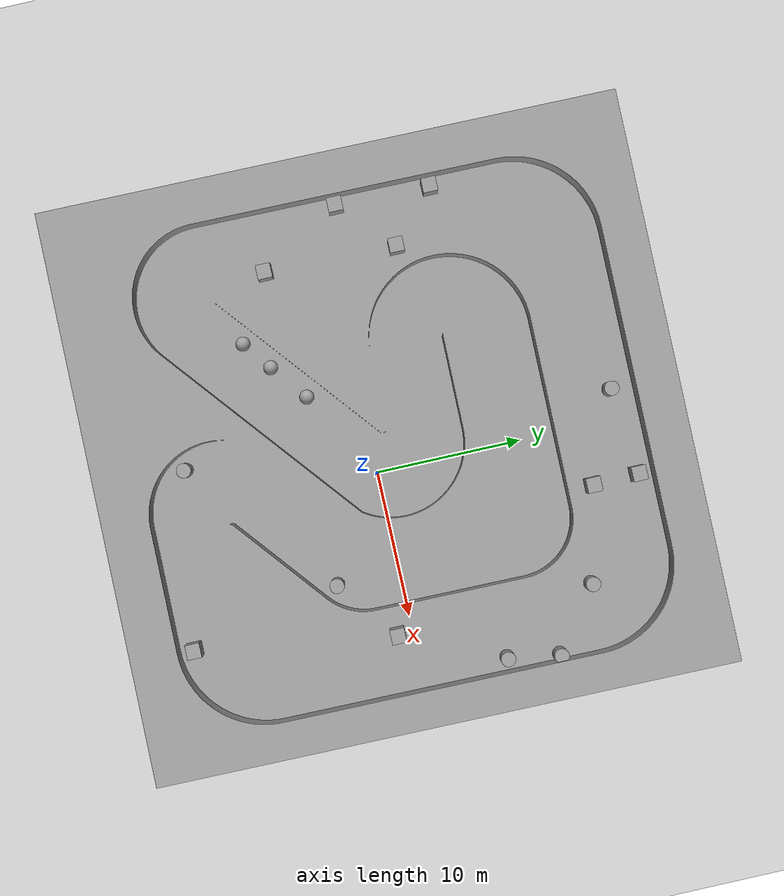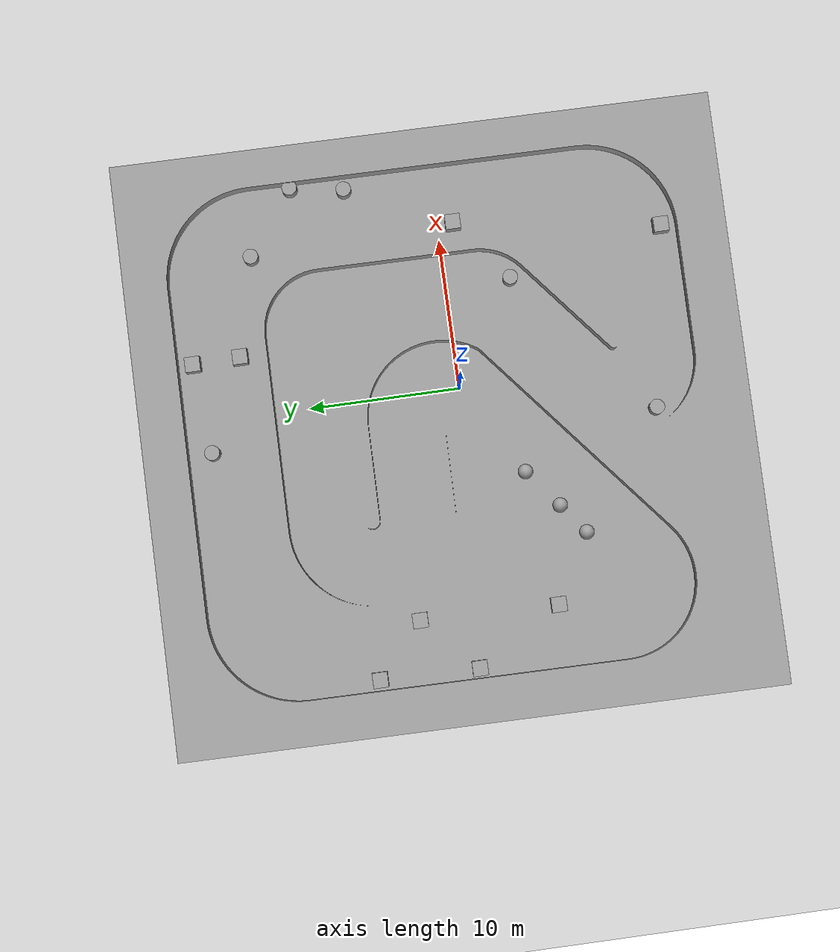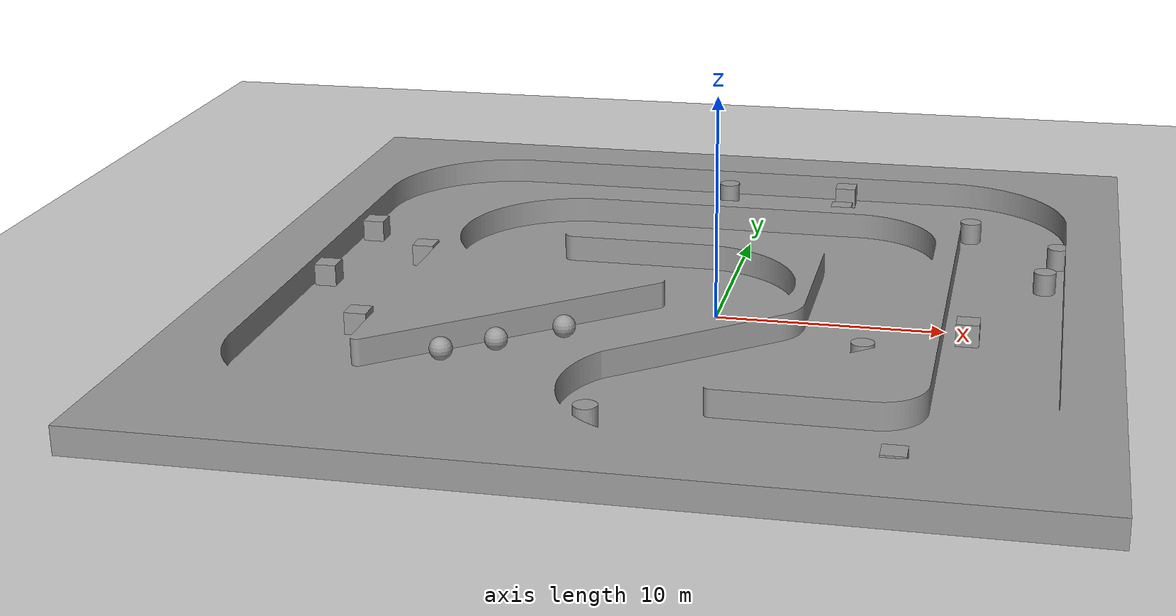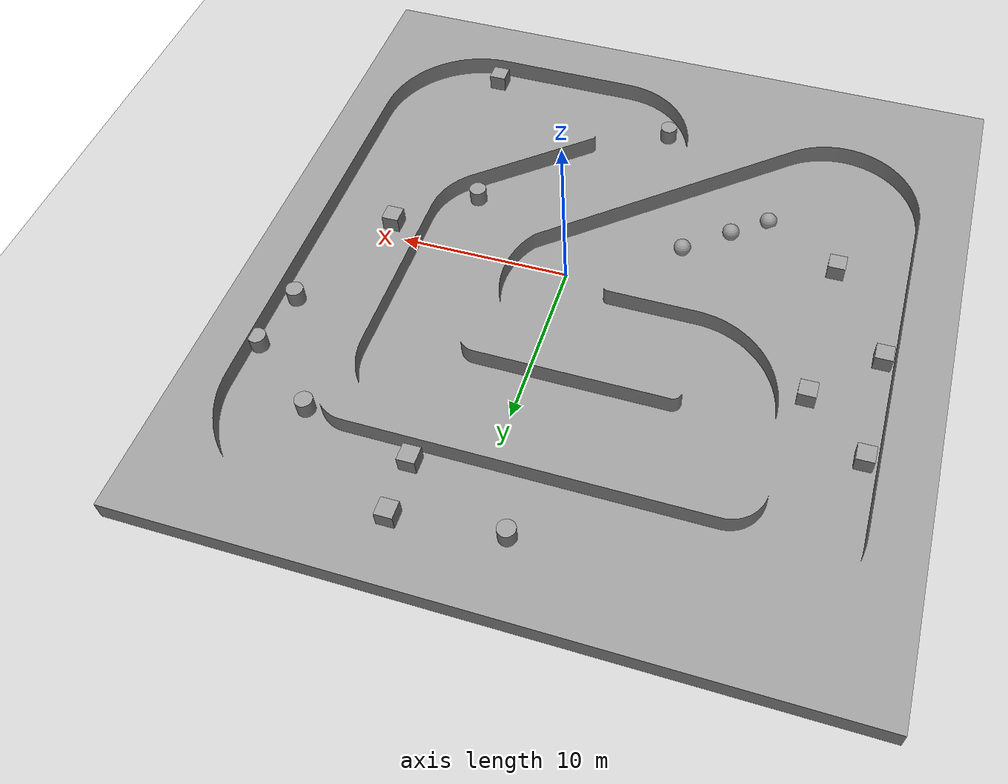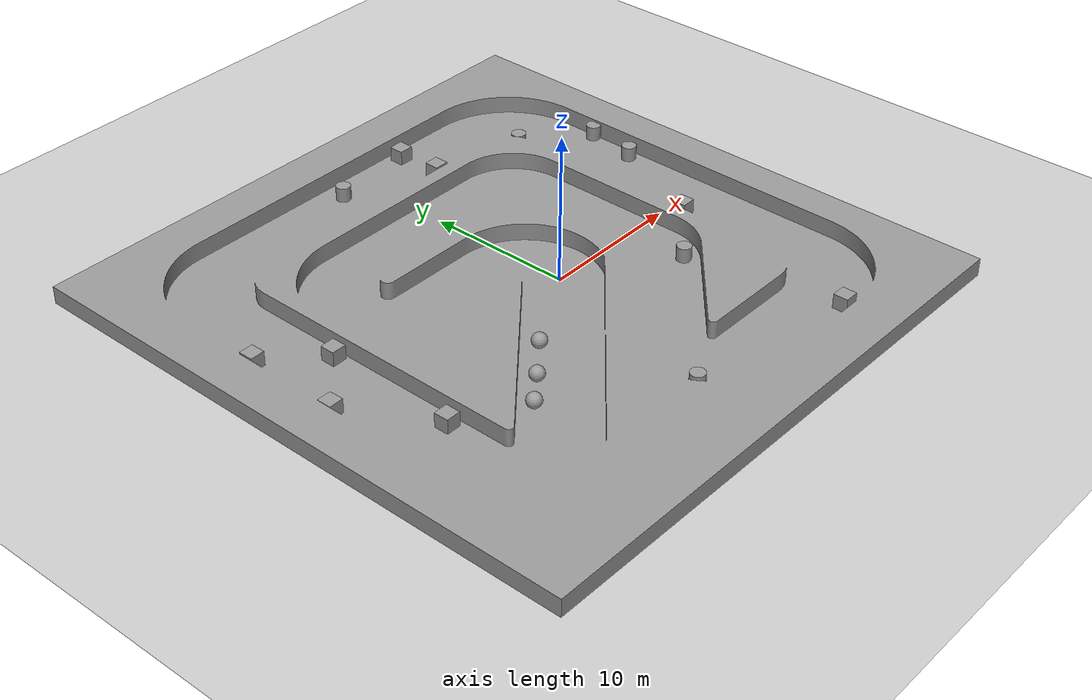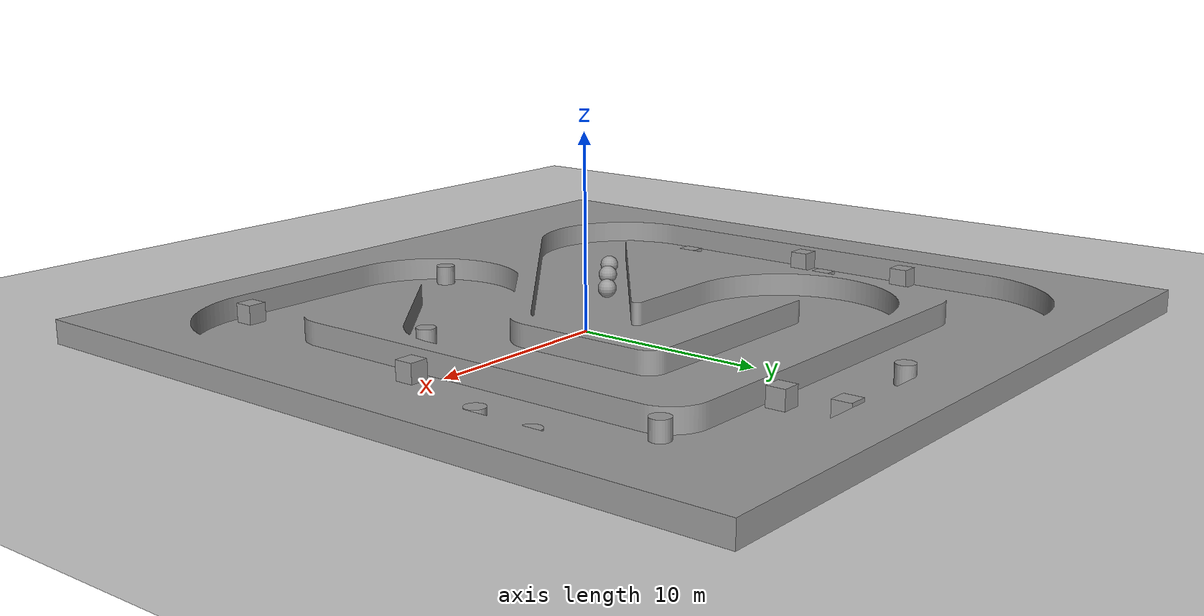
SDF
<sdf version="1.7">
 <world name="default">
  <light name="sun" type="directional">
   <pose>0 0 10 0 -0 0</pose>
   <diffuse>0.8 0.8 0.8 1</diffuse>
   <specular>0.2 0.2 0.2 1</specular>
   <attenuation>
    <range>1000</range>
    <constant>0.9</constant>
    <linear>0.01</linear>
    <quadratic>0.001</quadratic>
   </attenuation>
   <direction>-0.5 0.1 -0.9</direction>
   <spot><inner_angle>0</inner_angle><outer_angle>0</outer_angle><falloff>0</falloff></spot>
  </light>
  <model name="ground_plane">
   <static>1</static>
   <link name="link">
    <collision name="collision">
     <geometry><plane><normal>0 0 1</normal><size>100 100</size></plane></geometry>
     <surface><friction><ode><mu>100</mu><mu2>50</mu2></ode></friction></surface>
    </collision>
    <visual name="visual">
     <cast_shadows>0</cast_shadows>
     <geometry><plane><normal>0 0 1</normal><size>100 100</size></plane></geometry>
     <material>
      <script><uri>file://media/materials/scripts/gazebo.material</uri><name>Gazebo/Grey</name></script>
     </material>
    </visual>
   </link>
  </model>
  <gravity>0 0 -9.8</gravity>
  <magnetic_field>6e-06 2.3e-05 -4.2e-05</magnetic_field>
  <atmosphere type="adiabatic"/>
  <physics type="ode">
   <max_step_size>0.001</max_step_size>
   <real_time_factor>1</real_time_factor>
   <real_time_update_rate>1000</real_time_update_rate>
  </physics>
  <scene><ambient>0.4 0.4 0.4 1</ambient><background>0.7 0.7 0.7 1</background><shadows>1</shadows></scene>
  <audio><device>default</device></audio>
  <spherical_coordinates>
   <surface_model>EARTH_WGS84</surface_model>
   <latitude_deg>0</latitude_deg>
   <longitude_deg>0</longitude_deg>
   <elevation>0</elevation>
   <heading_deg>0</heading_deg>
  </spherical_coordinates>
  <model name="race_track_gap">
   <link name="link_11">
    <inertial>
     <mass>1e+07</mass>
     <inertia>
      <ixx>0.166667</ixx>
      <ixy>0</ixy>
      <ixz>0</ixz>
      <iyy>0.166667</iyy>
      <iyz>0</iyz>
      <izz>0.166667</izz>
     </inertia>
    </inertial>
    <pose>-13.9587 8.82102 0 1.57148 9e-06 3.13255</pose>
    <visual name="visual">
     <geometry>
      <mesh>
       <uri>/home/ivan/ros2_ws_2501/src/f112th_sim_2501_alpha/worlds/pista.stl</uri>
       <scale>0.002 0.002 0.002</scale>
      </mesh>
     </geometry>
     <material>
      <lighting>1</lighting>
      <script><uri>file://media/materials/scripts/gazebo.material</uri><name>Gazebo/Grey</name></script>
      <shader type="pixel"><normal_map>__default__</normal_map></shader>
      <ambient>0.3 0.3 0.3 1</ambient>
      <diffuse>0.7 0.7 0.7 1</diffuse>
      <specular>0.01 0.01 0.01 1</specular>
      <emissive>0 0 0 1</emissive>
     </material>
    </visual>
    <collision name="collision">
     <geometry>
      <mesh>
       <uri>/home/ivan/ros2_ws_2501/src/f112th_sim_2501_alpha/worlds/pista.stl</uri>
       <scale>0.002 0.002 0.002</scale>
      </mesh>
     </geometry>
     <surface>
      <friction>
       <ode><mu>1</mu><mu2>1</mu2><fdir1>0 0 0</fdir1><slip1>0</slip1><slip2>0</slip2></ode>
       <torsional>
        <coefficient>1</coefficient>
        <patch_radius>0</patch_radius>
        <surface_radius>0</surface_radius>
        <use_patch_radius>1</use_patch_radius>
        <ode><slip>0</slip></ode>
       </torsional>
      </friction>
      <bounce><restitution_coefficient>0</restitution_coefficient><threshold>1e+06</threshold></bounce>
      <contact>
       <collide_without_contact>0</collide_without_contact>
       <collide_without_contact_bitmask>1</collide_without_contact_bitmask>
       <collide_bitmask>1</collide_bitmask>
       <ode>
        <soft_cfm>0</soft_cfm>
        <soft_erp>0.2</soft_erp>
        <kp>1e+13</kp>
        <kd>1</kd>
        <max_vel>0.01</max_vel>
        <min_depth>0</min_depth>
       </ode>
       <bullet>
        <split_impulse>1</split_impulse>
        <split_impulse_penetration_threshold>-0.01</split_impulse_penetration_threshold>
        <soft_cfm>0</soft_cfm>
        <soft_erp>0.2</soft_erp>
        <kp>1e+13</kp>
        <kd>1</kd>
       </bullet>
      </contact>
     </surface>
    </collision>
   </link>
   <link name="link_14">
    <inertial>
     <mass>1</mass>
     <inertia><ixx>0.145833</ixx><ixy>0</ixy><ixz>0</ixz><iyy>0.145833</iyy><iyz>0</iyz><izz>0.125</izz></inertia>
    </inertial>
    <pose>-2.10932 14.0891 -0.65224 0 -0 0</pose>
    <visual name="visual">
     <geometry><cylinder><radius>0.5</radius><length>1</length></cylinder></geometry>
     <material>
      <lighting>1</lighting>
      <script><uri>file://media/materials/scripts/gazebo.material</uri><name>Gazebo/Grey</name></script>
      <shader type="pixel"/>
     </material>
    </visual>
    <collision name="collision">
     <geometry><cylinder><radius>0.5</radius><length>1</length></cylinder></geometry>
     <surface>
      <friction>
       <ode><mu>1</mu><mu2>1</mu2><fdir1>0 0 0</fdir1><slip1>0</slip1><slip2>0</slip2></ode>
       <torsional>
        <coefficient>1</coefficient>
        <patch_radius>0</patch_radius>
        <surface_radius>0</surface_radius>
        <use_patch_radius>1</use_patch_radius>
        <ode><slip>0</slip></ode>
       </torsional>
      </friction>
      <bounce><restitution_coefficient>0</restitution_coefficient><threshold>1e+06</threshold></bounce>
      <contact>
       <collide_without_contact>0</collide_without_contact>
       <collide_without_contact_bitmask>1</collide_without_contact_bitmask>
       <collide_bitmask>1</collide_bitmask>
       <ode>
        <soft_cfm>0</soft_cfm>
        <soft_erp>0.2</soft_erp>
        <kp>1e+13</kp>
        <kd>1</kd>
        <max_vel>0.01</max_vel>
        <min_depth>0</min_depth>
       </ode>
       <bullet>
        <split_impulse>1</split_impulse>
        <split_impulse_penetration_threshold>-0.01</split_impulse_penetration_threshold>
        <soft_cfm>0</soft_cfm>
        <soft_erp>0.2</soft_erp>
        <kp>1e+13</kp>
        <kd>1</kd>
       </bullet>
      </contact>
     </surface>
    </collision>
   </link>
   <link name="link_15">
    <inertial>
     <mass>1</mass>
     <inertia>
      <ixx>0.166667</ixx>
      <ixy>0</ixy>
      <ixz>0</ixz>
      <iyy>0.166667</iyy>
      <iyz>0</iyz>
      <izz>0.166667</izz>
     </inertia>
    </inertial>
    <pose>3.87998 14.6441 -0.65224 0 -0 0</pose>
    <visual name="visual">
     <geometry><box><size>1 1 1</size></box></geometry>
     <material>
      <lighting>1</lighting>
      <script><uri>file://media/materials/scripts/gazebo.material</uri><name>Gazebo/Grey</name></script>
      <shader type="pixel"/>
     </material>
    </visual>
    <collision name="collision">
     <geometry><box><size>1 1 1</size></box></geometry>
     <surface>
      <friction>
       <ode><mu>1</mu><mu2>1</mu2><fdir1>0 0 0</fdir1><slip1>0</slip1><slip2>0</slip2></ode>
       <torsional>
        <coefficient>1</coefficient>
        <patch_radius>0</patch_radius>
        <surface_radius>0</surface_radius>
        <use_patch_radius>1</use_patch_radius>
        <ode><slip>0</slip></ode>
       </torsional>
      </friction>
      <bounce><restitution_coefficient>0</restitution_coefficient><threshold>1e+06</threshold></bounce>
      <contact>
       <collide_without_contact>0</collide_without_contact>
       <collide_without_contact_bitmask>1</collide_without_contact_bitmask>
       <collide_bitmask>1</collide_bitmask>
       <ode>
        <soft_cfm>0</soft_cfm>
        <soft_erp>0.2</soft_erp>
        <kp>1e+13</kp>
        <kd>1</kd>
        <max_vel>0.01</max_vel>
        <min_depth>0</min_depth>
       </ode>
       <bullet>
        <split_impulse>1</split_impulse>
        <split_impulse_penetration_threshold>-0.01</split_impulse_penetration_threshold>
        <soft_cfm>0</soft_cfm>
        <soft_erp>0.2</soft_erp>
        <kp>1e+13</kp>
        <kd>1</kd>
       </bullet>
      </contact>
     </surface>
    </collision>
   </link>
   <link name="link_16">
    <inertial>
     <mass>1</mass>
     <inertia>
      <ixx>0.166667</ixx>
      <ixy>0</ixy>
      <ixz>0</ixz>
      <iyy>0.166667</iyy>
      <iyz>0</iyz>
      <izz>0.166667</izz>
     </inertia>
    </inertial>
    <pose>3.96541 11.4857 -0.65224 0 -0 0</pose>
    <visual name="visual">
     <geometry><box><size>1 1 1</size></box></geometry>
     <material>
      <lighting>1</lighting>
      <script><uri>file://media/materials/scripts/gazebo.material</uri><name>Gazebo/Grey</name></script>
      <shader type="pixel"/>
     </material>
    </visual>
    <collision name="collision">
     <geometry><box><size>1 1 1</size></box></geometry>
     <surface>
      <friction>
       <ode><mu>1</mu><mu2>1</mu2><fdir1>0 0 0</fdir1><slip1>0</slip1><slip2>0</slip2></ode>
       <torsional>
        <coefficient>1</coefficient>
        <patch_radius>0</patch_radius>
        <surface_radius>0</surface_radius>
        <use_patch_radius>1</use_patch_radius>
        <ode><slip>0</slip></ode>
       </torsional>
      </friction>
      <bounce><restitution_coefficient>0</restitution_coefficient><threshold>1e+06</threshold></bounce>
      <contact>
       <collide_without_contact>0</collide_without_contact>
       <collide_without_contact_bitmask>1</collide_without_contact_bitmask>
       <collide_bitmask>1</collide_bitmask>
       <ode>
        <soft_cfm>0</soft_cfm>
        <soft_erp>0.2</soft_erp>
        <kp>1e+13</kp>
        <kd>1</kd>
        <max_vel>0.01</max_vel>
        <min_depth>0</min_depth>
       </ode>
       <bullet>
        <split_impulse>1</split_impulse>
        <split_impulse_penetration_threshold>-0.01</split_impulse_penetration_threshold>
        <soft_cfm>0</soft_cfm>
        <soft_erp>0.2</soft_erp>
        <kp>1e+13</kp>
        <kd>1</kd>
       </bullet>
      </contact>
     </surface>
    </collision>
   </link>
   <link name="link_17">
    <inertial>
     <mass>1</mass>
     <inertia><ixx>0.145833</ixx><ixy>0</ixy><ixz>0</ixz><iyy>0.145833</iyy><iyz>0</iyz><izz>0.125</izz></inertia>
    </inertial>
    <pose>10.4708 9.93328 -0.65224 0 -0 0</pose>
    <visual name="visual">
     <geometry><cylinder><radius>0.5</radius><length>1</length></cylinder></geometry>
     <material>
      <lighting>1</lighting>
      <script><uri>file://media/materials/scripts/gazebo.material</uri><name>Gazebo/Grey</name></script>
      <shader type="pixel"/>
     </material>
    </visual>
    <collision name="collision">
     <geometry><cylinder><radius>0.5</radius><length>1</length></cylinder></geometry>
     <surface>
      <friction>
       <ode><mu>1</mu><mu2>1</mu2><fdir1>0 0 0</fdir1><slip1>0</slip1><slip2>0</slip2></ode>
       <torsional>
        <coefficient>1</coefficient>
        <patch_radius>0</patch_radius>
        <surface_radius>0</surface_radius>
        <use_patch_radius>1</use_patch_radius>
        <ode><slip>0</slip></ode>
       </torsional>
      </friction>
      <bounce><restitution_coefficient>0</restitution_coefficient><threshold>1e+06</threshold></bounce>
      <contact>
       <collide_without_contact>0</collide_without_contact>
       <collide_without_contact_bitmask>1</collide_without_contact_bitmask>
       <collide_bitmask>1</collide_bitmask>
       <ode>
        <soft_cfm>0</soft_cfm>
        <soft_erp>0.2</soft_erp>
        <kp>1e+13</kp>
        <kd>1</kd>
        <max_vel>0.01</max_vel>
        <min_depth>0</min_depth>
       </ode>
       <bullet>
        <split_impulse>1</split_impulse>
        <split_impulse_penetration_threshold>-0.01</split_impulse_penetration_threshold>
        <soft_cfm>0</soft_cfm>
        <soft_erp>0.2</soft_erp>
        <kp>1e+13</kp>
        <kd>1</kd>
       </bullet>
      </contact>
     </surface>
    </collision>
   </link>
   <link name="link_18">
    <inertial>
     <mass>1</mass>
     <inertia><ixx>0.145833</ixx><ixy>0</ixy><ixz>0</ixz><iyy>0.145833</iyy><iyz>0</iyz><izz>0.125</izz></inertia>
    </inertial>
    <pose>14.6852 6.80346 -0.65224 0 -0 0</pose>
    <visual name="visual">
     <geometry><cylinder><radius>0.5</radius><length>1</length></cylinder></geometry>
     <material>
      <lighting>1</lighting>
      <script><uri>file://media/materials/scripts/gazebo.material</uri><name>Gazebo/Grey</name></script>
      <shader type="pixel"/>
     </material>
    </visual>
    <collision name="collision">
     <geometry><cylinder><radius>0.5</radius><length>1</length></cylinder></geometry>
     <surface>
      <friction>
       <ode><mu>1</mu><mu2>1</mu2><fdir1>0 0 0</fdir1><slip1>0</slip1><slip2>0</slip2></ode>
       <torsional>
        <coefficient>1</coefficient>
        <patch_radius>0</patch_radius>
        <surface_radius>0</surface_radius>
        <use_patch_radius>1</use_patch_radius>
        <ode><slip>0</slip></ode>
       </torsional>
      </friction>
      <bounce><restitution_coefficient>0</restitution_coefficient><threshold>1e+06</threshold></bounce>
      <contact>
       <collide_without_contact>0</collide_without_contact>
       <collide_without_contact_bitmask>1</collide_without_contact_bitmask>
       <collide_bitmask>1</collide_bitmask>
       <ode>
        <soft_cfm>0</soft_cfm>
        <soft_erp>0.2</soft_erp>
        <kp>1e+13</kp>
        <kd>1</kd>
        <max_vel>0.01</max_vel>
        <min_depth>0</min_depth>
       </ode>
       <bullet>
        <split_impulse>1</split_impulse>
        <split_impulse_penetration_threshold>-0.01</split_impulse_penetration_threshold>
        <soft_cfm>0</soft_cfm>
        <soft_erp>0.2</soft_erp>
        <kp>1e+13</kp>
        <kd>1</kd>
       </bullet>
      </contact>
     </surface>
    </collision>
   </link>
   <link name="link_19">
    <inertial>
     <mass>1</mass>
     <inertia><ixx>0.145833</ixx><ixy>0</ixy><ixz>0</ixz><iyy>0.145833</iyy><iyz>0</iyz><izz>0.125</izz></inertia>
    </inertial>
    <pose>14.114 3.25758 -0.65224 0 -0 0</pose>
    <visual name="visual">
     <geometry><cylinder><radius>0.5</radius><length>1</length></cylinder></geometry>
     <material>
      <lighting>1</lighting>
      <script><uri>file://media/materials/scripts/gazebo.material</uri><name>Gazebo/Grey</name></script>
      <shader type="pixel"/>
     </material>
    </visual>
    <collision name="collision">
     <geometry><cylinder><radius>0.5</radius><length>1</length></cylinder></geometry>
     <surface>
      <friction>
       <ode><mu>1</mu><mu2>1</mu2><fdir1>0 0 0</fdir1><slip1>0</slip1><slip2>0</slip2></ode>
       <torsional>
        <coefficient>1</coefficient>
        <patch_radius>0</patch_radius>
        <surface_radius>0</surface_radius>
        <use_patch_radius>1</use_patch_radius>
        <ode><slip>0</slip></ode>
       </torsional>
      </friction>
      <bounce><restitution_coefficient>0</restitution_coefficient><threshold>1e+06</threshold></bounce>
      <contact>
       <collide_without_contact>0</collide_without_contact>
       <collide_without_contact_bitmask>1</collide_without_contact_bitmask>
       <collide_bitmask>1</collide_bitmask>
       <ode>
        <soft_cfm>0</soft_cfm>
        <soft_erp>0.2</soft_erp>
        <kp>1e+13</kp>
        <kd>1</kd>
        <max_vel>0.01</max_vel>
        <min_depth>0</min_depth>
       </ode>
       <bullet>
        <split_impulse>1</split_impulse>
        <split_impulse_penetration_threshold>-0.01</split_impulse_penetration_threshold>
        <soft_cfm>0</soft_cfm>
        <soft_erp>0.2</soft_erp>
        <kp>1e+13</kp>
        <kd>1</kd>
       </bullet>
      </contact>
     </surface>
    </collision>
   </link>
   <link name="link_20">
    <inertial>
     <mass>1</mass>
     <inertia>
      <ixx>0.166667</ixx>
      <ixy>0</ixy>
      <ixz>0</ixz>
      <iyy>0.166667</iyy>
      <iyz>0</iyz>
      <izz>0.166667</izz>
     </inertia>
    </inertial>
    <pose>10.977 -3.6296 -0.65224 0 -0 0</pose>
    <visual name="visual">
     <geometry><box><size>1 1 1</size></box></geometry>
     <material>
      <lighting>1</lighting>
      <script><uri>file://media/materials/scripts/gazebo.material</uri><name>Gazebo/Grey</name></script>
      <shader type="pixel"/>
     </material>
    </visual>
    <collision name="collision">
     <geometry><box><size>1 1 1</size></box></geometry>
     <surface>
      <friction>
       <ode><mu>1</mu><mu2>1</mu2><fdir1>0 0 0</fdir1><slip1>0</slip1><slip2>0</slip2></ode>
       <torsional>
        <coefficient>1</coefficient>
        <patch_radius>0</patch_radius>
        <surface_radius>0</surface_radius>
        <use_patch_radius>1</use_patch_radius>
        <ode><slip>0</slip></ode>
       </torsional>
      </friction>
      <bounce><restitution_coefficient>0</restitution_coefficient><threshold>1e+06</threshold></bounce>
      <contact>
       <collide_without_contact>0</collide_without_contact>
       <collide_without_contact_bitmask>1</collide_without_contact_bitmask>
       <collide_bitmask>1</collide_bitmask>
       <ode>
        <soft_cfm>0</soft_cfm>
        <soft_erp>0.2</soft_erp>
        <kp>1e+13</kp>
        <kd>1</kd>
        <max_vel>0.01</max_vel>
        <min_depth>0</min_depth>
       </ode>
       <bullet>
        <split_impulse>1</split_impulse>
        <split_impulse_penetration_threshold>-0.01</split_impulse_penetration_threshold>
        <soft_cfm>0</soft_cfm>
        <soft_erp>0.2</soft_erp>
        <kp>1e+13</kp>
        <kd>1</kd>
       </bullet>
      </contact>
     </surface>
    </collision>
   </link>
   <link name="link_21">
    <inertial>
     <mass>1</mass>
     <inertia>
      <ixx>0.166667</ixx>
      <ixy>0</ixy>
      <ixz>0</ixz>
      <iyy>0.166667</iyy>
      <iyz>0</iyz>
      <izz>0.166667</izz>
     </inertia>
    </inertial>
    <pose>8.93822 -17.2789 -0.65224 0 -0 0</pose>
    <visual name="visual">
     <geometry><box><size>1 1 1</size></box></geometry>
     <material>
      <lighting>1</lighting>
      <script><uri>file://media/materials/scripts/gazebo.material</uri><name>Gazebo/Grey</name></script>
      <shader type="pixel"/>
     </material>
    </visual>
    <collision name="collision">
     <geometry><box><size>1 1 1</size></box></geometry>
     <surface>
      <friction>
       <ode><mu>1</mu><mu2>1</mu2><fdir1>0 0 0</fdir1><slip1>0</slip1><slip2>0</slip2></ode>
       <torsional>
        <coefficient>1</coefficient>
        <patch_radius>0</patch_radius>
        <surface_radius>0</surface_radius>
        <use_patch_radius>1</use_patch_radius>
        <ode><slip>0</slip></ode>
       </torsional>
      </friction>
      <bounce><restitution_coefficient>0</restitution_coefficient><threshold>1e+06</threshold></bounce>
      <contact>
       <collide_without_contact>0</collide_without_contact>
       <collide_without_contact_bitmask>1</collide_without_contact_bitmask>
       <collide_bitmask>1</collide_bitmask>
       <ode>
        <soft_cfm>0</soft_cfm>
        <soft_erp>0.2</soft_erp>
        <kp>1e+13</kp>
        <kd>1</kd>
        <max_vel>0.01</max_vel>
        <min_depth>0</min_depth>
       </ode>
       <bullet>
        <split_impulse>1</split_impulse>
        <split_impulse_penetration_threshold>-0.01</split_impulse_penetration_threshold>
        <soft_cfm>0</soft_cfm>
        <soft_erp>0.2</soft_erp>
        <kp>1e+13</kp>
        <kd>1</kd>
       </bullet>
      </contact>
     </surface>
    </collision>
   </link>
   <link name="link_22">
    <inertial>
     <mass>1</mass>
     <inertia><ixx>0.145833</ixx><ixy>0</ixy><ixz>0</ixz><iyy>0.145833</iyy><iyz>0</iyz><izz>0.125</izz></inertia>
    </inertial>
    <pose>-3.0562 -15.2724 -0.65224 0 -0 0</pose>
    <visual name="visual">
     <geometry><cylinder><radius>0.5</radius><length>1</length></cylinder></geometry>
     <material>
      <lighting>1</lighting>
      <script><uri>file://media/materials/scripts/gazebo.material</uri><name>Gazebo/Grey</name></script>
      <shader type="pixel"/>
     </material>
    </visual>
    <collision name="collision">
     <geometry><cylinder><radius>0.5</radius><length>1</length></cylinder></geometry>
     <surface>
      <friction>
       <ode><mu>1</mu><mu2>1</mu2><fdir1>0 0 0</fdir1><slip1>0</slip1><slip2>0</slip2></ode>
       <torsional>
        <coefficient>1</coefficient>
        <patch_radius>0</patch_radius>
        <surface_radius>0</surface_radius>
        <use_patch_radius>1</use_patch_radius>
        <ode><slip>0</slip></ode>
       </torsional>
      </friction>
      <bounce><restitution_coefficient>0</restitution_coefficient><threshold>1e+06</threshold></bounce>
      <contact>
       <collide_without_contact>0</collide_without_contact>
       <collide_without_contact_bitmask>1</collide_without_contact_bitmask>
       <collide_bitmask>1</collide_bitmask>
       <ode>
        <soft_cfm>0</soft_cfm>
        <soft_erp>0.2</soft_erp>
        <kp>1e+13</kp>
        <kd>1</kd>
        <max_vel>0.01</max_vel>
        <min_depth>0</min_depth>
       </ode>
       <bullet>
        <split_impulse>1</split_impulse>
        <split_impulse_penetration_threshold>-0.01</split_impulse_penetration_threshold>
        <soft_cfm>0</soft_cfm>
        <soft_erp>0.2</soft_erp>
        <kp>1e+13</kp>
        <kd>1</kd>
       </bullet>
      </contact>
     </surface>
    </collision>
   </link>
   <link name="link_23">
    <inertial>
     <mass>1</mass>
     <inertia><ixx>0.145833</ixx><ixy>0</ixy><ixz>0</ixz><iyy>0.145833</iyy><iyz>0</iyz><izz>0.125</izz></inertia>
    </inertial>
    <pose>6.79267 -6.89682 -0.65224 0 -0 0</pose>
    <visual name="visual">
     <geometry><cylinder><radius>0.5</radius><length>1</length></cylinder></geometry>
     <material>
      <lighting>1</lighting>
      <script><uri>file://media/materials/scripts/gazebo.material</uri><name>Gazebo/Grey</name></script>
      <shader type="pixel"/>
     </material>
    </visual>
    <collision name="collision">
     <geometry><cylinder><radius>0.5</radius><length>1</length></cylinder></geometry>
     <surface>
      <friction>
       <ode><mu>1</mu><mu2>1</mu2><fdir1>0 0 0</fdir1><slip1>0</slip1><slip2>0</slip2></ode>
       <torsional>
        <coefficient>1</coefficient>
        <patch_radius>0</patch_radius>
        <surface_radius>0</surface_radius>
        <use_patch_radius>1</use_patch_radius>
        <ode><slip>0</slip></ode>
       </torsional>
      </friction>
      <bounce><restitution_coefficient>0</restitution_coefficient><threshold>1e+06</threshold></bounce>
      <contact>
       <collide_without_contact>0</collide_without_contact>
       <collide_without_contact_bitmask>1</collide_without_contact_bitmask>
       <collide_bitmask>1</collide_bitmask>
       <ode>
        <soft_cfm>0</soft_cfm>
        <soft_erp>0.2</soft_erp>
        <kp>1e+13</kp>
        <kd>1</kd>
        <max_vel>0.01</max_vel>
        <min_depth>0</min_depth>
       </ode>
       <bullet>
        <split_impulse>1</split_impulse>
        <split_impulse_penetration_threshold>-0.01</split_impulse_penetration_threshold>
        <soft_cfm>0</soft_cfm>
        <soft_erp>0.2</soft_erp>
        <kp>1e+13</kp>
        <kd>1</kd>
       </bullet>
      </contact>
     </surface>
    </collision>
   </link>
   <link name="link_24">
    <inertial>
     <mass>1</mass>
     <inertia><ixx>0.1</ixx><ixy>0</ixy><ixz>0</ixz><iyy>0.1</iyy><iyz>0</iyz><izz>0.1</izz></inertia>
    </inertial>
    <pose>-6.09396 -6.12136 -0.65224 0 -0 0</pose>
    <visual name="visual">
     <geometry><sphere><radius>0.5</radius></sphere></geometry>
     <material>
      <lighting>1</lighting>
      <script><uri>file://media/materials/scripts/gazebo.material</uri><name>Gazebo/Grey</name></script>
      <shader type="pixel"/>
     </material>
    </visual>
    <collision name="collision">
     <geometry><sphere><radius>0.5</radius></sphere></geometry>
     <surface>
      <friction>
       <ode><mu>1</mu><mu2>1</mu2><fdir1>0 0 0</fdir1><slip1>0</slip1><slip2>0</slip2></ode>
       <torsional>
        <coefficient>1</coefficient>
        <patch_radius>0</patch_radius>
        <surface_radius>0</surface_radius>
        <use_patch_radius>1</use_patch_radius>
        <ode><slip>0</slip></ode>
       </torsional>
      </friction>
      <bounce><restitution_coefficient>0</restitution_coefficient><threshold>1e+06</threshold></bounce>
      <contact>
       <collide_without_contact>0</collide_without_contact>
       <collide_without_contact_bitmask>1</collide_without_contact_bitmask>
       <collide_bitmask>1</collide_bitmask>
       <ode>
        <soft_cfm>0</soft_cfm>
        <soft_erp>0.2</soft_erp>
        <kp>1e+13</kp>
        <kd>1</kd>
        <max_vel>0.01</max_vel>
        <min_depth>0</min_depth>
       </ode>
       <bullet>
        <split_impulse>1</split_impulse>
        <split_impulse_penetration_threshold>-0.01</split_impulse_penetration_threshold>
        <soft_cfm>0</soft_cfm>
        <soft_erp>0.2</soft_erp>
        <kp>1e+13</kp>
        <kd>1</kd>
       </bullet>
      </contact>
     </surface>
    </collision>
   </link>
   <link name="link_25">
    <inertial>
     <mass>1</mass>
     <inertia><ixx>0.1</ixx><ixy>0</ixy><ixz>0</ixz><iyy>0.1</iyy><iyz>0</iyz><izz>0.1</izz></inertia>
    </inertial>
    <pose>-8.58164 -8.07232 -0.65224 0 -0 0</pose>
    <visual name="visual">
     <geometry><sphere><radius>0.5</radius></sphere></geometry>
     <material>
      <lighting>1</lighting>
      <script><uri>file://media/materials/scripts/gazebo.material</uri><name>Gazebo/Grey</name></script>
      <shader type="pixel"/>
     </material>
    </visual>
    <collision name="collision">
     <geometry><sphere><radius>0.5</radius></sphere></geometry>
     <surface>
      <friction>
       <ode><mu>1</mu><mu2>1</mu2><fdir1>0 0 0</fdir1><slip1>0</slip1><slip2>0</slip2></ode>
       <torsional>
        <coefficient>1</coefficient>
        <patch_radius>0</patch_radius>
        <surface_radius>0</surface_radius>
        <use_patch_radius>1</use_patch_radius>
        <ode><slip>0</slip></ode>
       </torsional>
      </friction>
      <bounce><restitution_coefficient>0</restitution_coefficient><threshold>1e+06</threshold></bounce>
      <contact>
       <collide_without_contact>0</collide_without_contact>
       <collide_without_contact_bitmask>1</collide_without_contact_bitmask>
       <collide_bitmask>1</collide_bitmask>
       <ode>
        <soft_cfm>0</soft_cfm>
        <soft_erp>0.2</soft_erp>
        <kp>1e+13</kp>
        <kd>1</kd>
        <max_vel>0.01</max_vel>
        <min_depth>0</min_depth>
       </ode>
       <bullet>
        <split_impulse>1</split_impulse>
        <split_impulse_penetration_threshold>-0.01</split_impulse_penetration_threshold>
        <soft_cfm>0</soft_cfm>
        <soft_erp>0.2</soft_erp>
        <kp>1e+13</kp>
        <kd>1</kd>
       </bullet>
      </contact>
     </surface>
    </collision>
   </link>
   <link name="link_26">
    <inertial>
     <mass>1</mass>
     <inertia><ixx>0.1</ixx><ixy>0</ixy><ixz>0</ixz><iyy>0.1</iyy><iyz>0</iyz><izz>0.1</izz></inertia>
    </inertial>
    <pose>-10.5587 -9.55438 -0.65224 0 -0 0</pose>
    <visual name="visual">
     <geometry><sphere><radius>0.5</radius></sphere></geometry>
     <material>
      <lighting>1</lighting>
      <script><uri>file://media/materials/scripts/gazebo.material</uri><name>Gazebo/Grey</name></script>
      <shader type="pixel"/>
     </material>
    </visual>
    <collision name="collision">
     <geometry><sphere><radius>0.5</radius></sphere></geometry>
     <surface>
      <friction>
       <ode><mu>1</mu><mu2>1</mu2><fdir1>0 0 0</fdir1><slip1>0</slip1><slip2>0</slip2></ode>
       <torsional>
        <coefficient>1</coefficient>
        <patch_radius>0</patch_radius>
        <surface_radius>0</surface_radius>
        <use_patch_radius>1</use_patch_radius>
        <ode><slip>0</slip></ode>
       </torsional>
      </friction>
      <bounce><restitution_coefficient>0</restitution_coefficient><threshold>1e+06</threshold></bounce>
      <contact>
       <collide_without_contact>0</collide_without_contact>
       <collide_without_contact_bitmask>1</collide_without_contact_bitmask>
       <collide_bitmask>1</collide_bitmask>
       <ode>
        <soft_cfm>0</soft_cfm>
        <soft_erp>0.2</soft_erp>
        <kp>1e+13</kp>
        <kd>1</kd>
        <max_vel>0.01</max_vel>
        <min_depth>0</min_depth>
       </ode>
       <bullet>
        <split_impulse>1</split_impulse>
        <split_impulse_penetration_threshold>-0.01</split_impulse_penetration_threshold>
        <soft_cfm>0</soft_cfm>
        <soft_erp>0.2</soft_erp>
        <kp>1e+13</kp>
        <kd>1</kd>
       </bullet>
      </contact>
     </surface>
    </collision>
   </link>
   <link name="link_27">
    <inertial>
     <mass>1</mass>
     <inertia>
      <ixx>0.166667</ixx>
      <ixy>0</ixy>
      <ixz>0</ixz>
      <iyy>0.166667</iyy>
      <iyz>0</iyz>
      <izz>0.166667</izz>
     </inertia>
    </inertial>
    <pose>-14.9942 -7.06036 -0.65224 0 -0 0</pose>
    <visual name="visual">
     <geometry><box><size>1 1 1</size></box></geometry>
     <material>
      <lighting>1</lighting>
      <script><uri>file://media/materials/scripts/gazebo.material</uri><name>Gazebo/Grey</name></script>
      <shader type="pixel"/>
     </material>
    </visual>
    <collision name="collision">
     <geometry><box><size>1 1 1</size></box></geometry>
     <surface>
      <friction>
       <ode><mu>1</mu><mu2>1</mu2><fdir1>0 0 0</fdir1><slip1>0</slip1><slip2>0</slip2></ode>
       <torsional>
        <coefficient>1</coefficient>
        <patch_radius>0</patch_radius>
        <surface_radius>0</surface_radius>
        <use_patch_radius>1</use_patch_radius>
        <ode><slip>0</slip></ode>
       </torsional>
      </friction>
      <bounce><restitution_coefficient>0</restitution_coefficient><threshold>1e+06</threshold></bounce>
      <contact>
       <collide_without_contact>0</collide_without_contact>
       <collide_without_contact_bitmask>1</collide_without_contact_bitmask>
       <collide_bitmask>1</collide_bitmask>
       <ode>
        <soft_cfm>0</soft_cfm>
        <soft_erp>0.2</soft_erp>
        <kp>1e+13</kp>
        <kd>1</kd>
        <max_vel>0.01</max_vel>
        <min_depth>0</min_depth>
       </ode>
       <bullet>
        <split_impulse>1</split_impulse>
        <split_impulse_penetration_threshold>-0.01</split_impulse_penetration_threshold>
        <soft_cfm>0</soft_cfm>
        <soft_erp>0.2</soft_erp>
        <kp>1e+13</kp>
        <kd>1</kd>
       </bullet>
      </contact>
     </surface>
    </collision>
   </link>
   <link name="link_28">
    <inertial>
     <mass>1</mass>
     <inertia>
      <ixx>0.166667</ixx>
      <ixy>0</ixy>
      <ixz>0</ixz>
      <iyy>0.166667</iyy>
      <iyz>0</iyz>
      <izz>0.166667</izz>
     </inertia>
    </inertial>
    <pose>-18.3917 -1.39831 -0.65224 0 -0 0</pose>
    <visual name="visual">
     <geometry><box><size>1 1 1</size></box></geometry>
     <material>
      <lighting>1</lighting>
      <script><uri>file://media/materials/scripts/gazebo.material</uri><name>Gazebo/Grey</name></script>
      <shader type="pixel"/>
     </material>
    </visual>
    <collision name="collision">
     <geometry><box><size>1 1 1</size></box></geometry>
     <surface>
      <friction>
       <ode><mu>1</mu><mu2>1</mu2><fdir1>0 0 0</fdir1><slip1>0</slip1><slip2>0</slip2></ode>
       <torsional>
        <coefficient>1</coefficient>
        <patch_radius>0</patch_radius>
        <surface_radius>0</surface_radius>
        <use_patch_radius>1</use_patch_radius>
        <ode><slip>0</slip></ode>
       </torsional>
      </friction>
      <bounce><restitution_coefficient>0</restitution_coefficient><threshold>1e+06</threshold></bounce>
      <contact>
       <collide_without_contact>0</collide_without_contact>
       <collide_without_contact_bitmask>1</collide_without_contact_bitmask>
       <collide_bitmask>1</collide_bitmask>
       <ode>
        <soft_cfm>0</soft_cfm>
        <soft_erp>0.2</soft_erp>
        <kp>1e+13</kp>
        <kd>1</kd>
        <max_vel>0.01</max_vel>
        <min_depth>0</min_depth>
       </ode>
       <bullet>
        <split_impulse>1</split_impulse>
        <split_impulse_penetration_threshold>-0.01</split_impulse_penetration_threshold>
        <soft_cfm>0</soft_cfm>
        <soft_erp>0.2</soft_erp>
        <kp>1e+13</kp>
        <kd>1</kd>
       </bullet>
      </contact>
     </surface>
    </collision>
   </link>
   <link name="link_29">
    <inertial>
     <mass>1</mass>
     <inertia>
      <ixx>0.166667</ixx>
      <ixy>0</ixy>
      <ixz>0</ixz>
      <iyy>0.166667</iyy>
      <iyz>0</iyz>
      <izz>0.166667</izz>
     </inertia>
    </inertial>
    <pose>-14.7971 2.04802 -0.65224 0 -0 0</pose>
    <visual name="visual">
     <geometry><box><size>1 1 1</size></box></geometry>
     <material>
      <lighting>1</lighting>
      <script><uri>file://media/materials/scripts/gazebo.material</uri><name>Gazebo/Grey</name></script>
      <shader type="pixel"/>
     </material>
    </visual>
    <collision name="collision">
     <geometry><box><size>1 1 1</size></box></geometry>
     <surface>
      <friction>
       <ode><mu>1</mu><mu2>1</mu2><fdir1>0 0 0</fdir1><slip1>0</slip1><slip2>0</slip2></ode>
       <torsional>
        <coefficient>1</coefficient>
        <patch_radius>0</patch_radius>
        <surface_radius>0</surface_radius>
        <use_patch_radius>1</use_patch_radius>
        <ode><slip>0</slip></ode>
       </torsional>
      </friction>
      <bounce><restitution_coefficient>0</restitution_coefficient><threshold>1e+06</threshold></bounce>
      <contact>
       <collide_without_contact>0</collide_without_contact>
       <collide_without_contact_bitmask>1</collide_without_contact_bitmask>
       <collide_bitmask>1</collide_bitmask>
       <ode>
        <soft_cfm>0</soft_cfm>
        <soft_erp>0.2</soft_erp>
        <kp>1e+13</kp>
        <kd>1</kd>
        <max_vel>0.01</max_vel>
        <min_depth>0</min_depth>
       </ode>
       <bullet>
        <split_impulse>1</split_impulse>
        <split_impulse_penetration_threshold>-0.01</split_impulse_penetration_threshold>
        <soft_cfm>0</soft_cfm>
        <soft_erp>0.2</soft_erp>
        <kp>1e+13</kp>
        <kd>1</kd>
       </bullet>
      </contact>
     </surface>
    </collision>
   </link>
   <link name="link_30">
    <inertial>
     <mass>1</mass>
     <inertia>
      <ixx>0.166667</ixx>
      <ixy>0</ixy>
      <ixz>0</ixz>
      <iyy>0.166667</iyy>
      <iyz>0</iyz>
      <izz>0.166667</izz>
     </inertia>
    </inertial>
    <pose>-18.2682 5.13453 -0.65224 0 -0 0</pose>
    <visual name="visual">
     <geometry><box><size>1 1 1</size></box></geometry>
     <material>
      <lighting>1</lighting>
      <script><uri>file://media/materials/scripts/gazebo.material</uri><name>Gazebo/Grey</name></script>
      <shader type="pixel"/>
     </material>
    </visual>
    <collision name="collision">
     <geometry><box><size>1 1 1</size></box></geometry>
     <surface>
      <friction>
       <ode><mu>1</mu><mu2>1</mu2><fdir1>0 0 0</fdir1><slip1>0</slip1><slip2>0</slip2></ode>
       <torsional>
        <coefficient>1</coefficient>
        <patch_radius>0</patch_radius>
        <surface_radius>0</surface_radius>
        <use_patch_radius>1</use_patch_radius>
        <ode><slip>0</slip></ode>
       </torsional>
      </friction>
      <bounce><restitution_coefficient>0</restitution_coefficient><threshold>1e+06</threshold></bounce>
      <contact>
       <collide_without_contact>0</collide_without_contact>
       <collide_without_contact_bitmask>1</collide_without_contact_bitmask>
       <collide_bitmask>1</collide_bitmask>
       <ode>
        <soft_cfm>0</soft_cfm>
        <soft_erp>0.2</soft_erp>
        <kp>1e+13</kp>
        <kd>1</kd>
        <max_vel>0.01</max_vel>
        <min_depth>0</min_depth>
       </ode>
       <bullet>
        <split_impulse>1</split_impulse>
        <split_impulse_penetration_threshold>-0.01</split_impulse_penetration_threshold>
        <soft_cfm>0</soft_cfm>
        <soft_erp>0.2</soft_erp>
        <kp>1e+13</kp>
        <kd>1</kd>
       </bullet>
      </contact>
     </surface>
    </collision>
   </link>
   <static>1</static>
   <pose>0.043925 2.59888 1.15224 0 -0 0</pose>
  </model>
 </world>
</sdf>
